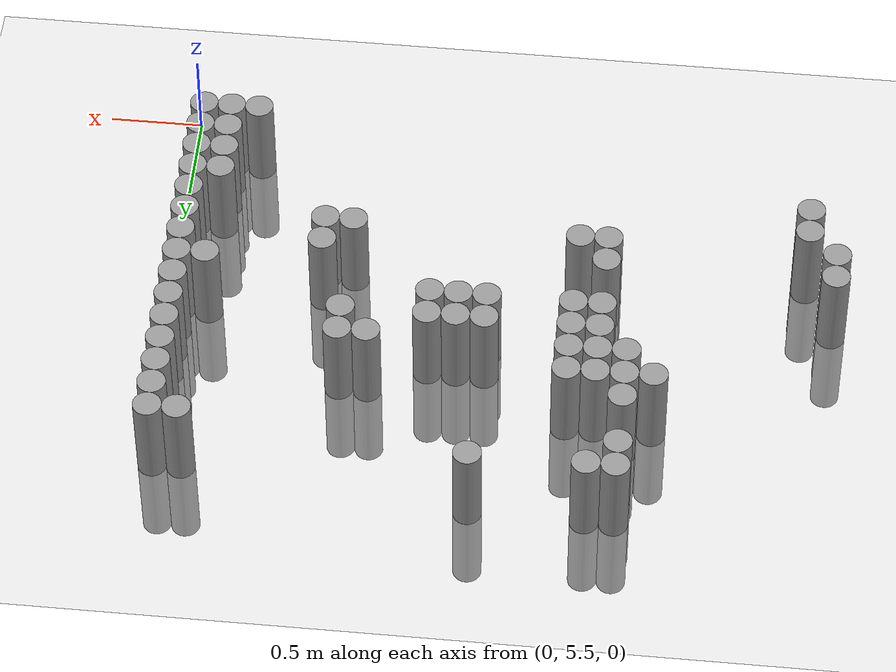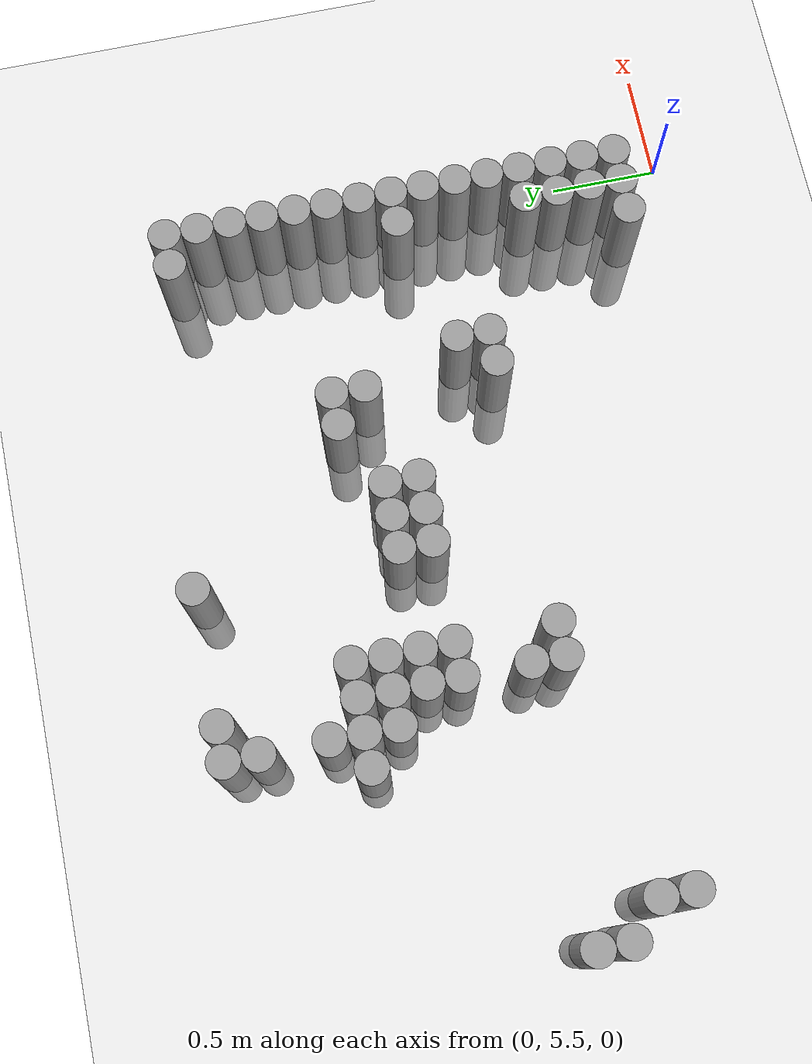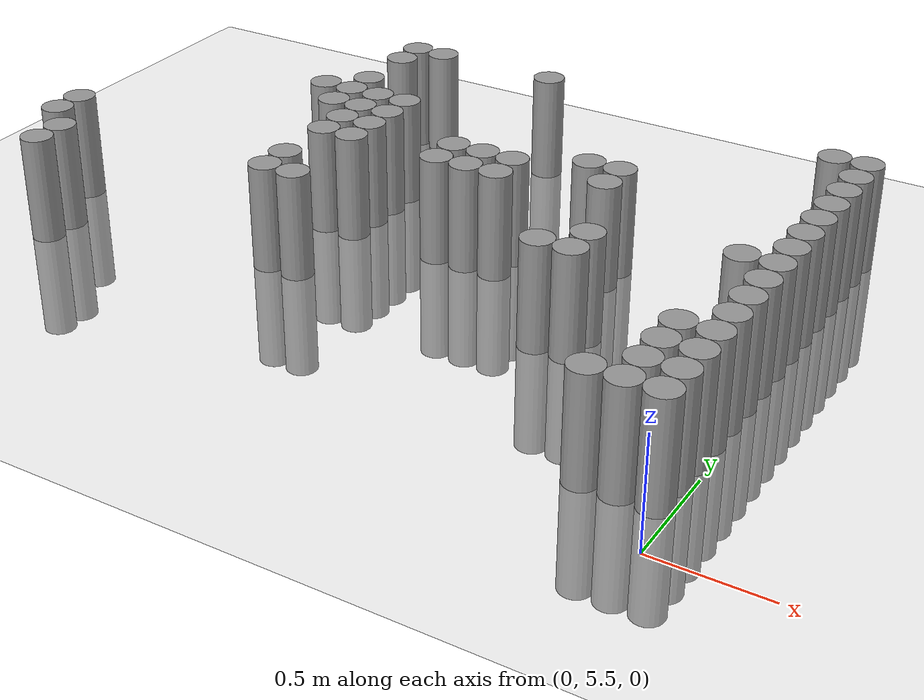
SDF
<sdf version="1.6">
 <world name="default">
  <model name="ground_plane">
   <static>1</static>
   <static>1</static>
   <link name="link">
    <collision name="collision">
     <geometry><plane><normal>0 0 1</normal><size>100 100</size></plane></geometry>
     <surface><friction><ode><mu>100</mu><mu2>50</mu2></ode></friction></surface>
    </collision>
    <visual name="visual">
     <cast_shadows>0</cast_shadows>
     <geometry><plane><normal>0 0 1</normal><size>100 100</size></plane></geometry>
     <material>
      <script><uri>file://media/materials/scripts/gazebo.material</uri><name>Gazebo/Grey</name></script>
     </material>
    </visual>
   </link>
  </model>
  <model name="unit_cylinder_162">
   <static>1</static>
   <pose>-3.525000 6.525000 0.000000 0.000000 0.000000 0.000000</pose>
   <link name="link">
    <inertial>
     <mass>1</mass>
     <inertia><ixx>0.145833</ixx><ixy>0</ixy><ixz>0</ixz><iyy>0.145833</iyy><iyz>0</iyz><izz>0.125</izz></inertia>
    </inertial>
    <collision name="collision">
     <geometry><cylinder><radius>0.075000</radius><length>1</length></cylinder></geometry>
    </collision>
    <visual name="visual">
     <geometry><cylinder><radius>0.075000</radius><length>1</length></cylinder></geometry>
     <material>
      <script><name>Gazebo/Grey</name><uri>file://media/materials/scripts/gazebo.material</uri></script>
     </material>
    </visual>
   </link>
  </model>
  <model name="unit_cylinder_163">
   <static>1</static>
   <pose>-3.525000 6.675000 0.000000 0.000000 0.000000 0.000000</pose>
   <link name="link">
    <inertial>
     <mass>1</mass>
     <inertia><ixx>0.145833</ixx><ixy>0</ixy><ixz>0</ixz><iyy>0.145833</iyy><iyz>0</iyz><izz>0.125</izz></inertia>
    </inertial>
    <collision name="collision">
     <geometry><cylinder><radius>0.075000</radius><length>1</length></cylinder></geometry>
    </collision>
    <visual name="visual">
     <geometry><cylinder><radius>0.075000</radius><length>1</length></cylinder></geometry>
     <material>
      <script><name>Gazebo/Grey</name><uri>file://media/materials/scripts/gazebo.material</uri></script>
     </material>
    </visual>
   </link>
  </model>
  <model name="unit_cylinder_164">
   <static>1</static>
   <pose>-3.375000 6.225000 0.000000 0.000000 0.000000 0.000000</pose>
   <link name="link">
    <inertial>
     <mass>1</mass>
     <inertia><ixx>0.145833</ixx><ixy>0</ixy><ixz>0</ixz><iyy>0.145833</iyy><iyz>0</iyz><izz>0.125</izz></inertia>
    </inertial>
    <collision name="collision">
     <geometry><cylinder><radius>0.075000</radius><length>1</length></cylinder></geometry>
    </collision>
    <visual name="visual">
     <geometry><cylinder><radius>0.075000</radius><length>1</length></cylinder></geometry>
     <material>
      <script><name>Gazebo/Grey</name><uri>file://media/materials/scripts/gazebo.material</uri></script>
     </material>
    </visual>
   </link>
  </model>
  <model name="unit_cylinder_165">
   <static>1</static>
   <pose>-3.375000 6.375000 0.000000 0.000000 0.000000 0.000000</pose>
   <link name="link">
    <inertial>
     <mass>1</mass>
     <inertia><ixx>0.145833</ixx><ixy>0</ixy><ixz>0</ixz><iyy>0.145833</iyy><iyz>0</iyz><izz>0.125</izz></inertia>
    </inertial>
    <collision name="collision">
     <geometry><cylinder><radius>0.075000</radius><length>1</length></cylinder></geometry>
    </collision>
    <visual name="visual">
     <geometry><cylinder><radius>0.075000</radius><length>1</length></cylinder></geometry>
     <material>
      <script><name>Gazebo/Grey</name><uri>file://media/materials/scripts/gazebo.material</uri></script>
     </material>
    </visual>
   </link>
  </model>
  <model name="unit_cylinder_169">
   <static>1</static>
   <pose>-2.625000 7.425000 0.000000 0.000000 0.000000 0.000000</pose>
   <link name="link">
    <inertial>
     <mass>1</mass>
     <inertia><ixx>0.145833</ixx><ixy>0</ixy><ixz>0</ixz><iyy>0.145833</iyy><iyz>0</iyz><izz>0.125</izz></inertia>
    </inertial>
    <collision name="collision">
     <geometry><cylinder><radius>0.075000</radius><length>1</length></cylinder></geometry>
    </collision>
    <visual name="visual">
     <geometry><cylinder><radius>0.075000</radius><length>1</length></cylinder></geometry>
     <material>
      <script><name>Gazebo/Grey</name><uri>file://media/materials/scripts/gazebo.material</uri></script>
     </material>
    </visual>
   </link>
  </model>
  <model name="unit_cylinder_170">
   <static>1</static>
   <pose>-2.475000 7.275000 0.000000 0.000000 0.000000 0.000000</pose>
   <link name="link">
    <inertial>
     <mass>1</mass>
     <inertia><ixx>0.145833</ixx><ixy>0</ixy><ixz>0</ixz><iyy>0.145833</iyy><iyz>0</iyz><izz>0.125</izz></inertia>
    </inertial>
    <collision name="collision">
     <geometry><cylinder><radius>0.075000</radius><length>1</length></cylinder></geometry>
    </collision>
    <visual name="visual">
     <geometry><cylinder><radius>0.075000</radius><length>1</length></cylinder></geometry>
     <material>
      <script><name>Gazebo/Grey</name><uri>file://media/materials/scripts/gazebo.material</uri></script>
     </material>
    </visual>
   </link>
  </model>
  <model name="unit_cylinder_171">
   <static>1</static>
   <pose>-2.475000 7.425000 0.000000 0.000000 0.000000 0.000000</pose>
   <link name="link">
    <inertial>
     <mass>1</mass>
     <inertia><ixx>0.145833</ixx><ixy>0</ixy><ixz>0</ixz><iyy>0.145833</iyy><iyz>0</iyz><izz>0.125</izz></inertia>
    </inertial>
    <collision name="collision">
     <geometry><cylinder><radius>0.075000</radius><length>1</length></cylinder></geometry>
    </collision>
    <visual name="visual">
     <geometry><cylinder><radius>0.075000</radius><length>1</length></cylinder></geometry>
     <material>
      <script><name>Gazebo/Grey</name><uri>file://media/materials/scripts/gazebo.material</uri></script>
     </material>
    </visual>
   </link>
  </model>
  <model name="unit_cylinder_172">
   <static>1</static>
   <pose>-2.475000 7.575000 0.000000 0.000000 0.000000 0.000000</pose>
   <link name="link">
    <inertial>
     <mass>1</mass>
     <inertia><ixx>0.145833</ixx><ixy>0</ixy><ixz>0</ixz><iyy>0.145833</iyy><iyz>0</iyz><izz>0.125</izz></inertia>
    </inertial>
    <collision name="collision">
     <geometry><cylinder><radius>0.075000</radius><length>1</length></cylinder></geometry>
    </collision>
    <visual name="visual">
     <geometry><cylinder><radius>0.075000</radius><length>1</length></cylinder></geometry>
     <material>
      <script><name>Gazebo/Grey</name><uri>file://media/materials/scripts/gazebo.material</uri></script>
     </material>
    </visual>
   </link>
  </model>
  <model name="unit_cylinder_173">
   <static>1</static>
   <pose>-2.475000 7.875000 0.000000 0.000000 0.000000 0.000000</pose>
   <link name="link">
    <inertial>
     <mass>1</mass>
     <inertia><ixx>0.145833</ixx><ixy>0</ixy><ixz>0</ixz><iyy>0.145833</iyy><iyz>0</iyz><izz>0.125</izz></inertia>
    </inertial>
    <collision name="collision">
     <geometry><cylinder><radius>0.075000</radius><length>1</length></cylinder></geometry>
    </collision>
    <visual name="visual">
     <geometry><cylinder><radius>0.075000</radius><length>1</length></cylinder></geometry>
     <material>
      <script><name>Gazebo/Grey</name><uri>file://media/materials/scripts/gazebo.material</uri></script>
     </material>
    </visual>
   </link>
  </model>
  <model name="unit_cylinder_174">
   <static>1</static>
   <pose>-2.475000 8.025000 0.000000 0.000000 0.000000 0.000000</pose>
   <link name="link">
    <inertial>
     <mass>1</mass>
     <inertia><ixx>0.145833</ixx><ixy>0</ixy><ixz>0</ixz><iyy>0.145833</iyy><iyz>0</iyz><izz>0.125</izz></inertia>
    </inertial>
    <collision name="collision">
     <geometry><cylinder><radius>0.075000</radius><length>1</length></cylinder></geometry>
    </collision>
    <visual name="visual">
     <geometry><cylinder><radius>0.075000</radius><length>1</length></cylinder></geometry>
     <material>
      <script><name>Gazebo/Grey</name><uri>file://media/materials/scripts/gazebo.material</uri></script>
     </material>
    </visual>
   </link>
  </model>
  <model name="unit_cylinder_177">
   <static>1</static>
   <pose>-2.325000 6.525000 0.000000 0.000000 0.000000 0.000000</pose>
   <link name="link">
    <inertial>
     <mass>1</mass>
     <inertia><ixx>0.145833</ixx><ixy>0</ixy><ixz>0</ixz><iyy>0.145833</iyy><iyz>0</iyz><izz>0.125</izz></inertia>
    </inertial>
    <collision name="collision">
     <geometry><cylinder><radius>0.075000</radius><length>1</length></cylinder></geometry>
    </collision>
    <visual name="visual">
     <geometry><cylinder><radius>0.075000</radius><length>1</length></cylinder></geometry>
     <material>
      <script><name>Gazebo/Grey</name><uri>file://media/materials/scripts/gazebo.material</uri></script>
     </material>
    </visual>
   </link>
  </model>
  <model name="unit_cylinder_178">
   <static>1</static>
   <pose>-2.325000 6.675000 0.000000 0.000000 0.000000 0.000000</pose>
   <link name="link">
    <inertial>
     <mass>1</mass>
     <inertia><ixx>0.145833</ixx><ixy>0</ixy><ixz>0</ixz><iyy>0.145833</iyy><iyz>0</iyz><izz>0.125</izz></inertia>
    </inertial>
    <collision name="collision">
     <geometry><cylinder><radius>0.075000</radius><length>1</length></cylinder></geometry>
    </collision>
    <visual name="visual">
     <geometry><cylinder><radius>0.075000</radius><length>1</length></cylinder></geometry>
     <material>
      <script><name>Gazebo/Grey</name><uri>file://media/materials/scripts/gazebo.material</uri></script>
     </material>
    </visual>
   </link>
  </model>
  <model name="unit_cylinder_179">
   <static>1</static>
   <pose>-2.325000 6.975000 0.000000 0.000000 0.000000 0.000000</pose>
   <link name="link">
    <inertial>
     <mass>1</mass>
     <inertia><ixx>0.145833</ixx><ixy>0</ixy><ixz>0</ixz><iyy>0.145833</iyy><iyz>0</iyz><izz>0.125</izz></inertia>
    </inertial>
    <collision name="collision">
     <geometry><cylinder><radius>0.075000</radius><length>1</length></cylinder></geometry>
    </collision>
    <visual name="visual">
     <geometry><cylinder><radius>0.075000</radius><length>1</length></cylinder></geometry>
     <material>
      <script><name>Gazebo/Grey</name><uri>file://media/materials/scripts/gazebo.material</uri></script>
     </material>
    </visual>
   </link>
  </model>
  <model name="unit_cylinder_180">
   <static>1</static>
   <pose>-2.325000 7.125000 0.000000 0.000000 0.000000 0.000000</pose>
   <link name="link">
    <inertial>
     <mass>1</mass>
     <inertia><ixx>0.145833</ixx><ixy>0</ixy><ixz>0</ixz><iyy>0.145833</iyy><iyz>0</iyz><izz>0.125</izz></inertia>
    </inertial>
    <collision name="collision">
     <geometry><cylinder><radius>0.075000</radius><length>1</length></cylinder></geometry>
    </collision>
    <visual name="visual">
     <geometry><cylinder><radius>0.075000</radius><length>1</length></cylinder></geometry>
     <material>
      <script><name>Gazebo/Grey</name><uri>file://media/materials/scripts/gazebo.material</uri></script>
     </material>
    </visual>
   </link>
  </model>
  <model name="unit_cylinder_181">
   <static>1</static>
   <pose>-2.325000 7.275000 0.000000 0.000000 0.000000 0.000000</pose>
   <link name="link">
    <inertial>
     <mass>1</mass>
     <inertia><ixx>0.145833</ixx><ixy>0</ixy><ixz>0</ixz><iyy>0.145833</iyy><iyz>0</iyz><izz>0.125</izz></inertia>
    </inertial>
    <collision name="collision">
     <geometry><cylinder><radius>0.075000</radius><length>1</length></cylinder></geometry>
    </collision>
    <visual name="visual">
     <geometry><cylinder><radius>0.075000</radius><length>1</length></cylinder></geometry>
     <material>
      <script><name>Gazebo/Grey</name><uri>file://media/materials/scripts/gazebo.material</uri></script>
     </material>
    </visual>
   </link>
  </model>
  <model name="unit_cylinder_182">
   <static>1</static>
   <pose>-2.325000 7.425000 0.000000 0.000000 0.000000 0.000000</pose>
   <link name="link">
    <inertial>
     <mass>1</mass>
     <inertia><ixx>0.145833</ixx><ixy>0</ixy><ixz>0</ixz><iyy>0.145833</iyy><iyz>0</iyz><izz>0.125</izz></inertia>
    </inertial>
    <collision name="collision">
     <geometry><cylinder><radius>0.075000</radius><length>1</length></cylinder></geometry>
    </collision>
    <visual name="visual">
     <geometry><cylinder><radius>0.075000</radius><length>1</length></cylinder></geometry>
     <material>
      <script><name>Gazebo/Grey</name><uri>file://media/materials/scripts/gazebo.material</uri></script>
     </material>
    </visual>
   </link>
  </model>
  <model name="unit_cylinder_183">
   <static>1</static>
   <pose>-2.325000 8.025000 0.000000 0.000000 0.000000 0.000000</pose>
   <link name="link">
    <inertial>
     <mass>1</mass>
     <inertia><ixx>0.145833</ixx><ixy>0</ixy><ixz>0</ixz><iyy>0.145833</iyy><iyz>0</iyz><izz>0.125</izz></inertia>
    </inertial>
    <collision name="collision">
     <geometry><cylinder><radius>0.075000</radius><length>1</length></cylinder></geometry>
    </collision>
    <visual name="visual">
     <geometry><cylinder><radius>0.075000</radius><length>1</length></cylinder></geometry>
     <material>
      <script><name>Gazebo/Grey</name><uri>file://media/materials/scripts/gazebo.material</uri></script>
     </material>
    </visual>
   </link>
  </model>
  <model name="unit_cylinder_188">
   <static>1</static>
   <pose>-2.175000 6.525000 0.000000 0.000000 0.000000 0.000000</pose>
   <link name="link">
    <inertial>
     <mass>1</mass>
     <inertia><ixx>0.145833</ixx><ixy>0</ixy><ixz>0</ixz><iyy>0.145833</iyy><iyz>0</iyz><izz>0.125</izz></inertia>
    </inertial>
    <collision name="collision">
     <geometry><cylinder><radius>0.075000</radius><length>1</length></cylinder></geometry>
    </collision>
    <visual name="visual">
     <geometry><cylinder><radius>0.075000</radius><length>1</length></cylinder></geometry>
     <material>
      <script><name>Gazebo/Grey</name><uri>file://media/materials/scripts/gazebo.material</uri></script>
     </material>
    </visual>
   </link>
  </model>
  <model name="unit_cylinder_189">
   <static>1</static>
   <pose>-2.175000 6.975000 0.000000 0.000000 0.000000 0.000000</pose>
   <link name="link">
    <inertial>
     <mass>1</mass>
     <inertia><ixx>0.145833</ixx><ixy>0</ixy><ixz>0</ixz><iyy>0.145833</iyy><iyz>0</iyz><izz>0.125</izz></inertia>
    </inertial>
    <collision name="collision">
     <geometry><cylinder><radius>0.075000</radius><length>1</length></cylinder></geometry>
    </collision>
    <visual name="visual">
     <geometry><cylinder><radius>0.075000</radius><length>1</length></cylinder></geometry>
     <material>
      <script><name>Gazebo/Grey</name><uri>file://media/materials/scripts/gazebo.material</uri></script>
     </material>
    </visual>
   </link>
  </model>
  <model name="unit_cylinder_190">
   <static>1</static>
   <pose>-2.175000 7.125000 0.000000 0.000000 0.000000 0.000000</pose>
   <link name="link">
    <inertial>
     <mass>1</mass>
     <inertia><ixx>0.145833</ixx><ixy>0</ixy><ixz>0</ixz><iyy>0.145833</iyy><iyz>0</iyz><izz>0.125</izz></inertia>
    </inertial>
    <collision name="collision">
     <geometry><cylinder><radius>0.075000</radius><length>1</length></cylinder></geometry>
    </collision>
    <visual name="visual">
     <geometry><cylinder><radius>0.075000</radius><length>1</length></cylinder></geometry>
     <material>
      <script><name>Gazebo/Grey</name><uri>file://media/materials/scripts/gazebo.material</uri></script>
     </material>
    </visual>
   </link>
  </model>
  <model name="unit_cylinder_191">
   <static>1</static>
   <pose>-2.175000 7.275000 0.000000 0.000000 0.000000 0.000000</pose>
   <link name="link">
    <inertial>
     <mass>1</mass>
     <inertia><ixx>0.145833</ixx><ixy>0</ixy><ixz>0</ixz><iyy>0.145833</iyy><iyz>0</iyz><izz>0.125</izz></inertia>
    </inertial>
    <collision name="collision">
     <geometry><cylinder><radius>0.075000</radius><length>1</length></cylinder></geometry>
    </collision>
    <visual name="visual">
     <geometry><cylinder><radius>0.075000</radius><length>1</length></cylinder></geometry>
     <material>
      <script><name>Gazebo/Grey</name><uri>file://media/materials/scripts/gazebo.material</uri></script>
     </material>
    </visual>
   </link>
  </model>
  <model name="unit_cylinder_192">
   <static>1</static>
   <pose>-2.175000 7.425000 0.000000 0.000000 0.000000 0.000000</pose>
   <link name="link">
    <inertial>
     <mass>1</mass>
     <inertia><ixx>0.145833</ixx><ixy>0</ixy><ixz>0</ixz><iyy>0.145833</iyy><iyz>0</iyz><izz>0.125</izz></inertia>
    </inertial>
    <collision name="collision">
     <geometry><cylinder><radius>0.075000</radius><length>1</length></cylinder></geometry>
    </collision>
    <visual name="visual">
     <geometry><cylinder><radius>0.075000</radius><length>1</length></cylinder></geometry>
     <material>
      <script><name>Gazebo/Grey</name><uri>file://media/materials/scripts/gazebo.material</uri></script>
     </material>
    </visual>
   </link>
  </model>
  <model name="unit_cylinder_203">
   <static>1</static>
   <pose>-1.725000 6.975000 0.000000 0.000000 0.000000 0.000000</pose>
   <link name="link">
    <inertial>
     <mass>1</mass>
     <inertia><ixx>0.145833</ixx><ixy>0</ixy><ixz>0</ixz><iyy>0.145833</iyy><iyz>0</iyz><izz>0.125</izz></inertia>
    </inertial>
    <collision name="collision">
     <geometry><cylinder><radius>0.075000</radius><length>1</length></cylinder></geometry>
    </collision>
    <visual name="visual">
     <geometry><cylinder><radius>0.075000</radius><length>1</length></cylinder></geometry>
     <material>
      <script><name>Gazebo/Grey</name><uri>file://media/materials/scripts/gazebo.material</uri></script>
     </material>
    </visual>
   </link>
  </model>
  <model name="unit_cylinder_204">
   <static>1</static>
   <pose>-1.725000 7.125000 0.000000 0.000000 0.000000 0.000000</pose>
   <link name="link">
    <inertial>
     <mass>1</mass>
     <inertia><ixx>0.145833</ixx><ixy>0</ixy><ixz>0</ixz><iyy>0.145833</iyy><iyz>0</iyz><izz>0.125</izz></inertia>
    </inertial>
    <collision name="collision">
     <geometry><cylinder><radius>0.075000</radius><length>1</length></cylinder></geometry>
    </collision>
    <visual name="visual">
     <geometry><cylinder><radius>0.075000</radius><length>1</length></cylinder></geometry>
     <material>
      <script><name>Gazebo/Grey</name><uri>file://media/materials/scripts/gazebo.material</uri></script>
     </material>
    </visual>
   </link>
  </model>
  <model name="unit_cylinder_205">
   <static>1</static>
   <pose>-1.725000 8.025000 0.000000 0.000000 0.000000 0.000000</pose>
   <link name="link">
    <inertial>
     <mass>1</mass>
     <inertia><ixx>0.145833</ixx><ixy>0</ixy><ixz>0</ixz><iyy>0.145833</iyy><iyz>0</iyz><izz>0.125</izz></inertia>
    </inertial>
    <collision name="collision">
     <geometry><cylinder><radius>0.075000</radius><length>1</length></cylinder></geometry>
    </collision>
    <visual name="visual">
     <geometry><cylinder><radius>0.075000</radius><length>1</length></cylinder></geometry>
     <material>
      <script><name>Gazebo/Grey</name><uri>file://media/materials/scripts/gazebo.material</uri></script>
     </material>
    </visual>
   </link>
  </model>
  <model name="unit_cylinder_211">
   <static>1</static>
   <pose>-1.575000 6.975000 0.000000 0.000000 0.000000 0.000000</pose>
   <link name="link">
    <inertial>
     <mass>1</mass>
     <inertia><ixx>0.145833</ixx><ixy>0</ixy><ixz>0</ixz><iyy>0.145833</iyy><iyz>0</iyz><izz>0.125</izz></inertia>
    </inertial>
    <collision name="collision">
     <geometry><cylinder><radius>0.075000</radius><length>1</length></cylinder></geometry>
    </collision>
    <visual name="visual">
     <geometry><cylinder><radius>0.075000</radius><length>1</length></cylinder></geometry>
     <material>
      <script><name>Gazebo/Grey</name><uri>file://media/materials/scripts/gazebo.material</uri></script>
     </material>
    </visual>
   </link>
  </model>
  <model name="unit_cylinder_212">
   <static>1</static>
   <pose>-1.575000 7.125000 0.000000 0.000000 0.000000 0.000000</pose>
   <link name="link">
    <inertial>
     <mass>1</mass>
     <inertia><ixx>0.145833</ixx><ixy>0</ixy><ixz>0</ixz><iyy>0.145833</iyy><iyz>0</iyz><izz>0.125</izz></inertia>
    </inertial>
    <collision name="collision">
     <geometry><cylinder><radius>0.075000</radius><length>1</length></cylinder></geometry>
    </collision>
    <visual name="visual">
     <geometry><cylinder><radius>0.075000</radius><length>1</length></cylinder></geometry>
     <material>
      <script><name>Gazebo/Grey</name><uri>file://media/materials/scripts/gazebo.material</uri></script>
     </material>
    </visual>
   </link>
  </model>
  <model name="unit_cylinder_219">
   <static>1</static>
   <pose>-1.425000 6.975000 0.000000 0.000000 0.000000 0.000000</pose>
   <link name="link">
    <inertial>
     <mass>1</mass>
     <inertia><ixx>0.145833</ixx><ixy>0</ixy><ixz>0</ixz><iyy>0.145833</iyy><iyz>0</iyz><izz>0.125</izz></inertia>
    </inertial>
    <collision name="collision">
     <geometry><cylinder><radius>0.075000</radius><length>1</length></cylinder></geometry>
    </collision>
    <visual name="visual">
     <geometry><cylinder><radius>0.075000</radius><length>1</length></cylinder></geometry>
     <material>
      <script><name>Gazebo/Grey</name><uri>file://media/materials/scripts/gazebo.material</uri></script>
     </material>
    </visual>
   </link>
  </model>
  <model name="unit_cylinder_220">
   <static>1</static>
   <pose>-1.425000 7.125000 0.000000 0.000000 0.000000 0.000000</pose>
   <link name="link">
    <inertial>
     <mass>1</mass>
     <inertia><ixx>0.145833</ixx><ixy>0</ixy><ixz>0</ixz><iyy>0.145833</iyy><iyz>0</iyz><izz>0.125</izz></inertia>
    </inertial>
    <collision name="collision">
     <geometry><cylinder><radius>0.075000</radius><length>1</length></cylinder></geometry>
    </collision>
    <visual name="visual">
     <geometry><cylinder><radius>0.075000</radius><length>1</length></cylinder></geometry>
     <material>
      <script><name>Gazebo/Grey</name><uri>file://media/materials/scripts/gazebo.material</uri></script>
     </material>
    </visual>
   </link>
  </model>
  <model name="unit_cylinder_227">
   <static>1</static>
   <pose>-1.125000 7.275000 0.000000 0.000000 0.000000 0.000000</pose>
   <link name="link">
    <inertial>
     <mass>1</mass>
     <inertia><ixx>0.145833</ixx><ixy>0</ixy><ixz>0</ixz><iyy>0.145833</iyy><iyz>0</iyz><izz>0.125</izz></inertia>
    </inertial>
    <collision name="collision">
     <geometry><cylinder><radius>0.075000</radius><length>1</length></cylinder></geometry>
    </collision>
    <visual name="visual">
     <geometry><cylinder><radius>0.075000</radius><length>1</length></cylinder></geometry>
     <material>
      <script><name>Gazebo/Grey</name><uri>file://media/materials/scripts/gazebo.material</uri></script>
     </material>
    </visual>
   </link>
  </model>
  <model name="unit_cylinder_233">
   <static>1</static>
   <pose>-0.975000 6.525000 0.000000 0.000000 0.000000 0.000000</pose>
   <link name="link">
    <inertial>
     <mass>1</mass>
     <inertia><ixx>0.145833</ixx><ixy>0</ixy><ixz>0</ixz><iyy>0.145833</iyy><iyz>0</iyz><izz>0.125</izz></inertia>
    </inertial>
    <collision name="collision">
     <geometry><cylinder><radius>0.075000</radius><length>1</length></cylinder></geometry>
    </collision>
    <visual name="visual">
     <geometry><cylinder><radius>0.075000</radius><length>1</length></cylinder></geometry>
     <material>
      <script><name>Gazebo/Grey</name><uri>file://media/materials/scripts/gazebo.material</uri></script>
     </material>
    </visual>
   </link>
  </model>
  <model name="unit_cylinder_234">
   <static>1</static>
   <pose>-0.975000 7.125000 0.000000 0.000000 0.000000 0.000000</pose>
   <link name="link">
    <inertial>
     <mass>1</mass>
     <inertia><ixx>0.145833</ixx><ixy>0</ixy><ixz>0</ixz><iyy>0.145833</iyy><iyz>0</iyz><izz>0.125</izz></inertia>
    </inertial>
    <collision name="collision">
     <geometry><cylinder><radius>0.075000</radius><length>1</length></cylinder></geometry>
    </collision>
    <visual name="visual">
     <geometry><cylinder><radius>0.075000</radius><length>1</length></cylinder></geometry>
     <material>
      <script><name>Gazebo/Grey</name><uri>file://media/materials/scripts/gazebo.material</uri></script>
     </material>
    </visual>
   </link>
  </model>
  <model name="unit_cylinder_235">
   <static>1</static>
   <pose>-0.975000 7.275000 0.000000 0.000000 0.000000 0.000000</pose>
   <link name="link">
    <inertial>
     <mass>1</mass>
     <inertia><ixx>0.145833</ixx><ixy>0</ixy><ixz>0</ixz><iyy>0.145833</iyy><iyz>0</iyz><izz>0.125</izz></inertia>
    </inertial>
    <collision name="collision">
     <geometry><cylinder><radius>0.075000</radius><length>1</length></cylinder></geometry>
    </collision>
    <visual name="visual">
     <geometry><cylinder><radius>0.075000</radius><length>1</length></cylinder></geometry>
     <material>
      <script><name>Gazebo/Grey</name><uri>file://media/materials/scripts/gazebo.material</uri></script>
     </material>
    </visual>
   </link>
  </model>
  <model name="unit_cylinder_239">
   <static>1</static>
   <pose>-0.825000 6.525000 0.000000 0.000000 0.000000 0.000000</pose>
   <link name="link">
    <inertial>
     <mass>1</mass>
     <inertia><ixx>0.145833</ixx><ixy>0</ixy><ixz>0</ixz><iyy>0.145833</iyy><iyz>0</iyz><izz>0.125</izz></inertia>
    </inertial>
    <collision name="collision">
     <geometry><cylinder><radius>0.075000</radius><length>1</length></cylinder></geometry>
    </collision>
    <visual name="visual">
     <geometry><cylinder><radius>0.075000</radius><length>1</length></cylinder></geometry>
     <material>
      <script><name>Gazebo/Grey</name><uri>file://media/materials/scripts/gazebo.material</uri></script>
     </material>
    </visual>
   </link>
  </model>
  <model name="unit_cylinder_240">
   <static>1</static>
   <pose>-0.825000 6.675000 0.000000 0.000000 0.000000 0.000000</pose>
   <link name="link">
    <inertial>
     <mass>1</mass>
     <inertia><ixx>0.145833</ixx><ixy>0</ixy><ixz>0</ixz><iyy>0.145833</iyy><iyz>0</iyz><izz>0.125</izz></inertia>
    </inertial>
    <collision name="collision">
     <geometry><cylinder><radius>0.075000</radius><length>1</length></cylinder></geometry>
    </collision>
    <visual name="visual">
     <geometry><cylinder><radius>0.075000</radius><length>1</length></cylinder></geometry>
     <material>
      <script><name>Gazebo/Grey</name><uri>file://media/materials/scripts/gazebo.material</uri></script>
     </material>
    </visual>
   </link>
  </model>
  <model name="unit_cylinder_245">
   <static>1</static>
   <pose>-0.375000 5.775000 0.000000 0.000000 0.000000 0.000000</pose>
   <link name="link">
    <inertial>
     <mass>1</mass>
     <inertia><ixx>0.145833</ixx><ixy>0</ixy><ixz>0</ixz><iyy>0.145833</iyy><iyz>0</iyz><izz>0.125</izz></inertia>
    </inertial>
    <collision name="collision">
     <geometry><cylinder><radius>0.075000</radius><length>1</length></cylinder></geometry>
    </collision>
    <visual name="visual">
     <geometry><cylinder><radius>0.075000</radius><length>1</length></cylinder></geometry>
     <material>
      <script><name>Gazebo/Grey</name><uri>file://media/materials/scripts/gazebo.material</uri></script>
     </material>
    </visual>
   </link>
  </model>
  <model name="unit_cylinder_248">
   <static>1</static>
   <pose>-0.225000 5.775000 0.000000 0.000000 0.000000 0.000000</pose>
   <link name="link">
    <inertial>
     <mass>1</mass>
     <inertia><ixx>0.145833</ixx><ixy>0</ixy><ixz>0</ixz><iyy>0.145833</iyy><iyz>0</iyz><izz>0.125</izz></inertia>
    </inertial>
    <collision name="collision">
     <geometry><cylinder><radius>0.075000</radius><length>1</length></cylinder></geometry>
    </collision>
    <visual name="visual">
     <geometry><cylinder><radius>0.075000</radius><length>1</length></cylinder></geometry>
     <material>
      <script><name>Gazebo/Grey</name><uri>file://media/materials/scripts/gazebo.material</uri></script>
     </material>
    </visual>
   </link>
  </model>
  <model name="unit_cylinder_249">
   <static>1</static>
   <pose>-0.225000 5.925000 0.000000 0.000000 0.000000 0.000000</pose>
   <link name="link">
    <inertial>
     <mass>1</mass>
     <inertia><ixx>0.145833</ixx><ixy>0</ixy><ixz>0</ixz><iyy>0.145833</iyy><iyz>0</iyz><izz>0.125</izz></inertia>
    </inertial>
    <collision name="collision">
     <geometry><cylinder><radius>0.075000</radius><length>1</length></cylinder></geometry>
    </collision>
    <visual name="visual">
     <geometry><cylinder><radius>0.075000</radius><length>1</length></cylinder></geometry>
     <material>
      <script><name>Gazebo/Grey</name><uri>file://media/materials/scripts/gazebo.material</uri></script>
     </material>
    </visual>
   </link>
  </model>
  <model name="unit_cylinder_250">
   <static>1</static>
   <pose>-0.225000 6.075000 0.000000 0.000000 0.000000 0.000000</pose>
   <link name="link">
    <inertial>
     <mass>1</mass>
     <inertia><ixx>0.145833</ixx><ixy>0</ixy><ixz>0</ixz><iyy>0.145833</iyy><iyz>0</iyz><izz>0.125</izz></inertia>
    </inertial>
    <collision name="collision">
     <geometry><cylinder><radius>0.075000</radius><length>1</length></cylinder></geometry>
    </collision>
    <visual name="visual">
     <geometry><cylinder><radius>0.075000</radius><length>1</length></cylinder></geometry>
     <material>
      <script><name>Gazebo/Grey</name><uri>file://media/materials/scripts/gazebo.material</uri></script>
     </material>
    </visual>
   </link>
  </model>
  <model name="unit_cylinder_251">
   <static>1</static>
   <pose>-0.225000 6.225000 0.000000 0.000000 0.000000 0.000000</pose>
   <link name="link">
    <inertial>
     <mass>1</mass>
     <inertia><ixx>0.145833</ixx><ixy>0</ixy><ixz>0</ixz><iyy>0.145833</iyy><iyz>0</iyz><izz>0.125</izz></inertia>
    </inertial>
    <collision name="collision">
     <geometry><cylinder><radius>0.075000</radius><length>1</length></cylinder></geometry>
    </collision>
    <visual name="visual">
     <geometry><cylinder><radius>0.075000</radius><length>1</length></cylinder></geometry>
     <material>
      <script><name>Gazebo/Grey</name><uri>file://media/materials/scripts/gazebo.material</uri></script>
     </material>
    </visual>
   </link>
  </model>
  <model name="unit_cylinder_252">
   <static>1</static>
   <pose>-0.225000 6.825000 0.000000 0.000000 0.000000 0.000000</pose>
   <link name="link">
    <inertial>
     <mass>1</mass>
     <inertia><ixx>0.145833</ixx><ixy>0</ixy><ixz>0</ixz><iyy>0.145833</iyy><iyz>0</iyz><izz>0.125</izz></inertia>
    </inertial>
    <collision name="collision">
     <geometry><cylinder><radius>0.075000</radius><length>1</length></cylinder></geometry>
    </collision>
    <visual name="visual">
     <geometry><cylinder><radius>0.075000</radius><length>1</length></cylinder></geometry>
     <material>
      <script><name>Gazebo/Grey</name><uri>file://media/materials/scripts/gazebo.material</uri></script>
     </material>
    </visual>
   </link>
  </model>
  <model name="unit_cylinder_253">
   <static>1</static>
   <pose>-0.225000 7.875000 0.000000 0.000000 0.000000 0.000000</pose>
   <link name="link">
    <inertial>
     <mass>1</mass>
     <inertia><ixx>0.145833</ixx><ixy>0</ixy><ixz>0</ixz><iyy>0.145833</iyy><iyz>0</iyz><izz>0.125</izz></inertia>
    </inertial>
    <collision name="collision">
     <geometry><cylinder><radius>0.075000</radius><length>1</length></cylinder></geometry>
    </collision>
    <visual name="visual">
     <geometry><cylinder><radius>0.075000</radius><length>1</length></cylinder></geometry>
     <material>
      <script><name>Gazebo/Grey</name><uri>file://media/materials/scripts/gazebo.material</uri></script>
     </material>
    </visual>
   </link>
  </model>
  <model name="unit_cylinder_262">
   <static>1</static>
   <pose>-0.075000 5.775000 0.000000 0.000000 0.000000 0.000000</pose>
   <link name="link">
    <inertial>
     <mass>1</mass>
     <inertia><ixx>0.145833</ixx><ixy>0</ixy><ixz>0</ixz><iyy>0.145833</iyy><iyz>0</iyz><izz>0.125</izz></inertia>
    </inertial>
    <collision name="collision">
     <geometry><cylinder><radius>0.075000</radius><length>1</length></cylinder></geometry>
    </collision>
    <visual name="visual">
     <geometry><cylinder><radius>0.075000</radius><length>1</length></cylinder></geometry>
     <material>
      <script><name>Gazebo/Grey</name><uri>file://media/materials/scripts/gazebo.material</uri></script>
     </material>
    </visual>
   </link>
  </model>
  <model name="unit_cylinder_263">
   <static>1</static>
   <pose>-0.075000 5.925000 0.000000 0.000000 0.000000 0.000000</pose>
   <link name="link">
    <inertial>
     <mass>1</mass>
     <inertia><ixx>0.145833</ixx><ixy>0</ixy><ixz>0</ixz><iyy>0.145833</iyy><iyz>0</iyz><izz>0.125</izz></inertia>
    </inertial>
    <collision name="collision">
     <geometry><cylinder><radius>0.075000</radius><length>1</length></cylinder></geometry>
    </collision>
    <visual name="visual">
     <geometry><cylinder><radius>0.075000</radius><length>1</length></cylinder></geometry>
     <material>
      <script><name>Gazebo/Grey</name><uri>file://media/materials/scripts/gazebo.material</uri></script>
     </material>
    </visual>
   </link>
  </model>
  <model name="unit_cylinder_264">
   <static>1</static>
   <pose>-0.075000 6.075000 0.000000 0.000000 0.000000 0.000000</pose>
   <link name="link">
    <inertial>
     <mass>1</mass>
     <inertia><ixx>0.145833</ixx><ixy>0</ixy><ixz>0</ixz><iyy>0.145833</iyy><iyz>0</iyz><izz>0.125</izz></inertia>
    </inertial>
    <collision name="collision">
     <geometry><cylinder><radius>0.075000</radius><length>1</length></cylinder></geometry>
    </collision>
    <visual name="visual">
     <geometry><cylinder><radius>0.075000</radius><length>1</length></cylinder></geometry>
     <material>
      <script><name>Gazebo/Grey</name><uri>file://media/materials/scripts/gazebo.material</uri></script>
     </material>
    </visual>
   </link>
  </model>
  <model name="unit_cylinder_265">
   <static>1</static>
   <pose>-0.075000 6.225000 0.000000 0.000000 0.000000 0.000000</pose>
   <link name="link">
    <inertial>
     <mass>1</mass>
     <inertia><ixx>0.145833</ixx><ixy>0</ixy><ixz>0</ixz><iyy>0.145833</iyy><iyz>0</iyz><izz>0.125</izz></inertia>
    </inertial>
    <collision name="collision">
     <geometry><cylinder><radius>0.075000</radius><length>1</length></cylinder></geometry>
    </collision>
    <visual name="visual">
     <geometry><cylinder><radius>0.075000</radius><length>1</length></cylinder></geometry>
     <material>
      <script><name>Gazebo/Grey</name><uri>file://media/materials/scripts/gazebo.material</uri></script>
     </material>
    </visual>
   </link>
  </model>
  <model name="unit_cylinder_266">
   <static>1</static>
   <pose>-0.075000 6.375000 0.000000 0.000000 0.000000 0.000000</pose>
   <link name="link">
    <inertial>
     <mass>1</mass>
     <inertia><ixx>0.145833</ixx><ixy>0</ixy><ixz>0</ixz><iyy>0.145833</iyy><iyz>0</iyz><izz>0.125</izz></inertia>
    </inertial>
    <collision name="collision">
     <geometry><cylinder><radius>0.075000</radius><length>1</length></cylinder></geometry>
    </collision>
    <visual name="visual">
     <geometry><cylinder><radius>0.075000</radius><length>1</length></cylinder></geometry>
     <material>
      <script><name>Gazebo/Grey</name><uri>file://media/materials/scripts/gazebo.material</uri></script>
     </material>
    </visual>
   </link>
  </model>
  <model name="unit_cylinder_267">
   <static>1</static>
   <pose>-0.075000 6.525000 0.000000 0.000000 0.000000 0.000000</pose>
   <link name="link">
    <inertial>
     <mass>1</mass>
     <inertia><ixx>0.145833</ixx><ixy>0</ixy><ixz>0</ixz><iyy>0.145833</iyy><iyz>0</iyz><izz>0.125</izz></inertia>
    </inertial>
    <collision name="collision">
     <geometry><cylinder><radius>0.075000</radius><length>1</length></cylinder></geometry>
    </collision>
    <visual name="visual">
     <geometry><cylinder><radius>0.075000</radius><length>1</length></cylinder></geometry>
     <material>
      <script><name>Gazebo/Grey</name><uri>file://media/materials/scripts/gazebo.material</uri></script>
     </material>
    </visual>
   </link>
  </model>
  <model name="unit_cylinder_268">
   <static>1</static>
   <pose>-0.075000 6.675000 0.000000 0.000000 0.000000 0.000000</pose>
   <link name="link">
    <inertial>
     <mass>1</mass>
     <inertia><ixx>0.145833</ixx><ixy>0</ixy><ixz>0</ixz><iyy>0.145833</iyy><iyz>0</iyz><izz>0.125</izz></inertia>
    </inertial>
    <collision name="collision">
     <geometry><cylinder><radius>0.075000</radius><length>1</length></cylinder></geometry>
    </collision>
    <visual name="visual">
     <geometry><cylinder><radius>0.075000</radius><length>1</length></cylinder></geometry>
     <material>
      <script><name>Gazebo/Grey</name><uri>file://media/materials/scripts/gazebo.material</uri></script>
     </material>
    </visual>
   </link>
  </model>
  <model name="unit_cylinder_269">
   <static>1</static>
   <pose>-0.075000 6.825000 0.000000 0.000000 0.000000 0.000000</pose>
   <link name="link">
    <inertial>
     <mass>1</mass>
     <inertia><ixx>0.145833</ixx><ixy>0</ixy><ixz>0</ixz><iyy>0.145833</iyy><iyz>0</iyz><izz>0.125</izz></inertia>
    </inertial>
    <collision name="collision">
     <geometry><cylinder><radius>0.075000</radius><length>1</length></cylinder></geometry>
    </collision>
    <visual name="visual">
     <geometry><cylinder><radius>0.075000</radius><length>1</length></cylinder></geometry>
     <material>
      <script><name>Gazebo/Grey</name><uri>file://media/materials/scripts/gazebo.material</uri></script>
     </material>
    </visual>
   </link>
  </model>
  <model name="unit_cylinder_270">
   <static>1</static>
   <pose>-0.075000 6.975000 0.000000 0.000000 0.000000 0.000000</pose>
   <link name="link">
    <inertial>
     <mass>1</mass>
     <inertia><ixx>0.145833</ixx><ixy>0</ixy><ixz>0</ixz><iyy>0.145833</iyy><iyz>0</iyz><izz>0.125</izz></inertia>
    </inertial>
    <collision name="collision">
     <geometry><cylinder><radius>0.075000</radius><length>1</length></cylinder></geometry>
    </collision>
    <visual name="visual">
     <geometry><cylinder><radius>0.075000</radius><length>1</length></cylinder></geometry>
     <material>
      <script><name>Gazebo/Grey</name><uri>file://media/materials/scripts/gazebo.material</uri></script>
     </material>
    </visual>
   </link>
  </model>
  <model name="unit_cylinder_271">
   <static>1</static>
   <pose>-0.075000 7.125000 0.000000 0.000000 0.000000 0.000000</pose>
   <link name="link">
    <inertial>
     <mass>1</mass>
     <inertia><ixx>0.145833</ixx><ixy>0</ixy><ixz>0</ixz><iyy>0.145833</iyy><iyz>0</iyz><izz>0.125</izz></inertia>
    </inertial>
    <collision name="collision">
     <geometry><cylinder><radius>0.075000</radius><length>1</length></cylinder></geometry>
    </collision>
    <visual name="visual">
     <geometry><cylinder><radius>0.075000</radius><length>1</length></cylinder></geometry>
     <material>
      <script><name>Gazebo/Grey</name><uri>file://media/materials/scripts/gazebo.material</uri></script>
     </material>
    </visual>
   </link>
  </model>
  <model name="unit_cylinder_272">
   <static>1</static>
   <pose>-0.075000 7.275000 0.000000 0.000000 0.000000 0.000000</pose>
   <link name="link">
    <inertial>
     <mass>1</mass>
     <inertia><ixx>0.145833</ixx><ixy>0</ixy><ixz>0</ixz><iyy>0.145833</iyy><iyz>0</iyz><izz>0.125</izz></inertia>
    </inertial>
    <collision name="collision">
     <geometry><cylinder><radius>0.075000</radius><length>1</length></cylinder></geometry>
    </collision>
    <visual name="visual">
     <geometry><cylinder><radius>0.075000</radius><length>1</length></cylinder></geometry>
     <material>
      <script><name>Gazebo/Grey</name><uri>file://media/materials/scripts/gazebo.material</uri></script>
     </material>
    </visual>
   </link>
  </model>
  <model name="unit_cylinder_273">
   <static>1</static>
   <pose>-0.075000 7.425000 0.000000 0.000000 0.000000 0.000000</pose>
   <link name="link">
    <inertial>
     <mass>1</mass>
     <inertia><ixx>0.145833</ixx><ixy>0</ixy><ixz>0</ixz><iyy>0.145833</iyy><iyz>0</iyz><izz>0.125</izz></inertia>
    </inertial>
    <collision name="collision">
     <geometry><cylinder><radius>0.075000</radius><length>1</length></cylinder></geometry>
    </collision>
    <visual name="visual">
     <geometry><cylinder><radius>0.075000</radius><length>1</length></cylinder></geometry>
     <material>
      <script><name>Gazebo/Grey</name><uri>file://media/materials/scripts/gazebo.material</uri></script>
     </material>
    </visual>
   </link>
  </model>
  <model name="unit_cylinder_274">
   <static>1</static>
   <pose>-0.075000 7.575000 0.000000 0.000000 0.000000 0.000000</pose>
   <link name="link">
    <inertial>
     <mass>1</mass>
     <inertia><ixx>0.145833</ixx><ixy>0</ixy><ixz>0</ixz><iyy>0.145833</iyy><iyz>0</iyz><izz>0.125</izz></inertia>
    </inertial>
    <collision name="collision">
     <geometry><cylinder><radius>0.075000</radius><length>1</length></cylinder></geometry>
    </collision>
    <visual name="visual">
     <geometry><cylinder><radius>0.075000</radius><length>1</length></cylinder></geometry>
     <material>
      <script><name>Gazebo/Grey</name><uri>file://media/materials/scripts/gazebo.material</uri></script>
     </material>
    </visual>
   </link>
  </model>
  <model name="unit_cylinder_275">
   <static>1</static>
   <pose>-0.075000 7.725000 0.000000 0.000000 0.000000 0.000000</pose>
   <link name="link">
    <inertial>
     <mass>1</mass>
     <inertia><ixx>0.145833</ixx><ixy>0</ixy><ixz>0</ixz><iyy>0.145833</iyy><iyz>0</iyz><izz>0.125</izz></inertia>
    </inertial>
    <collision name="collision">
     <geometry><cylinder><radius>0.075000</radius><length>1</length></cylinder></geometry>
    </collision>
    <visual name="visual">
     <geometry><cylinder><radius>0.075000</radius><length>1</length></cylinder></geometry>
     <material>
      <script><name>Gazebo/Grey</name><uri>file://media/materials/scripts/gazebo.material</uri></script>
     </material>
    </visual>
   </link>
  </model>
  <model name="unit_cylinder_276">
   <static>1</static>
   <pose>-0.075000 7.875000 0.000000 0.000000 0.000000 0.000000</pose>
   <link name="link">
    <inertial>
     <mass>1</mass>
     <inertia><ixx>0.145833</ixx><ixy>0</ixy><ixz>0</ixz><iyy>0.145833</iyy><iyz>0</iyz><izz>0.125</izz></inertia>
    </inertial>
    <collision name="collision">
     <geometry><cylinder><radius>0.075000</radius><length>1</length></cylinder></geometry>
    </collision>
    <visual name="visual">
     <geometry><cylinder><radius>0.075000</radius><length>1</length></cylinder></geometry>
     <material>
      <script><name>Gazebo/Grey</name><uri>file://media/materials/scripts/gazebo.material</uri></script>
     </material>
    </visual>
   </link>
  </model>
 </world>
</sdf>
